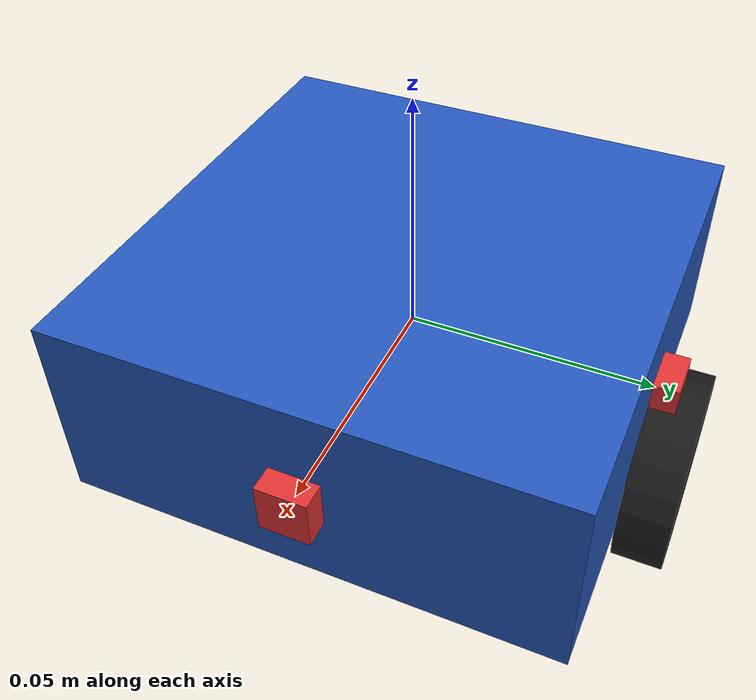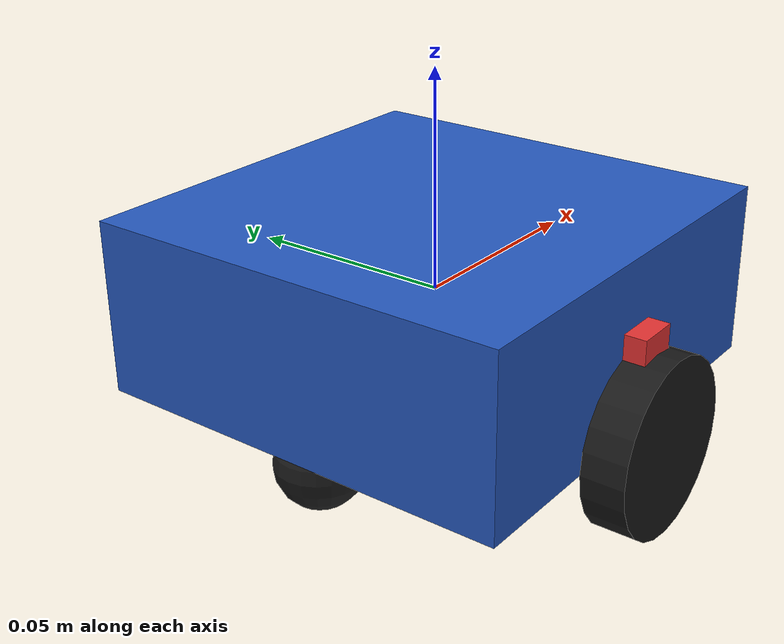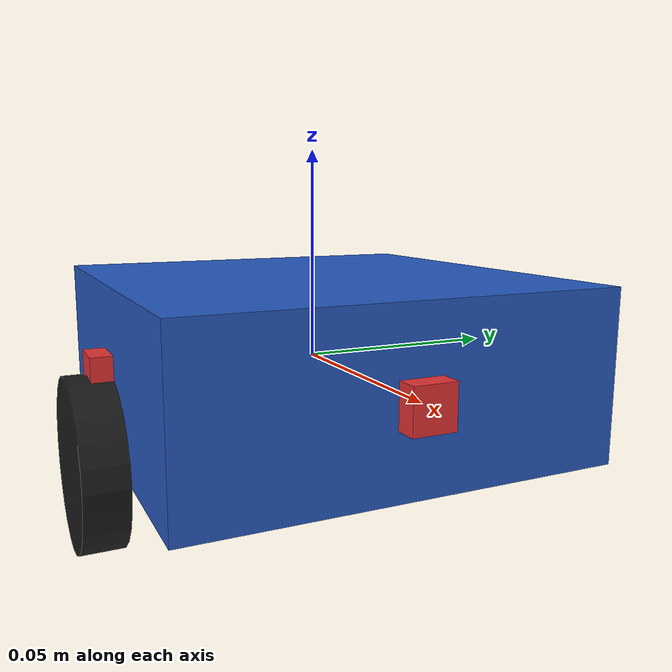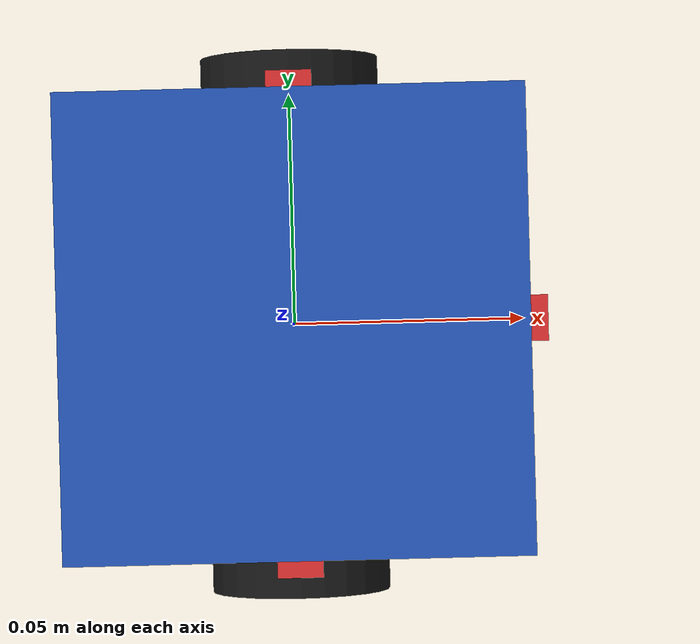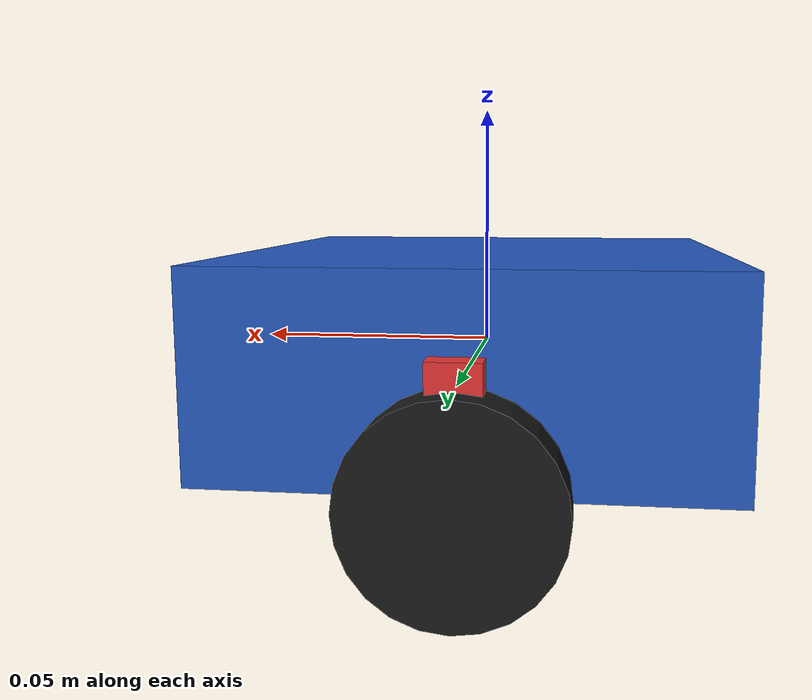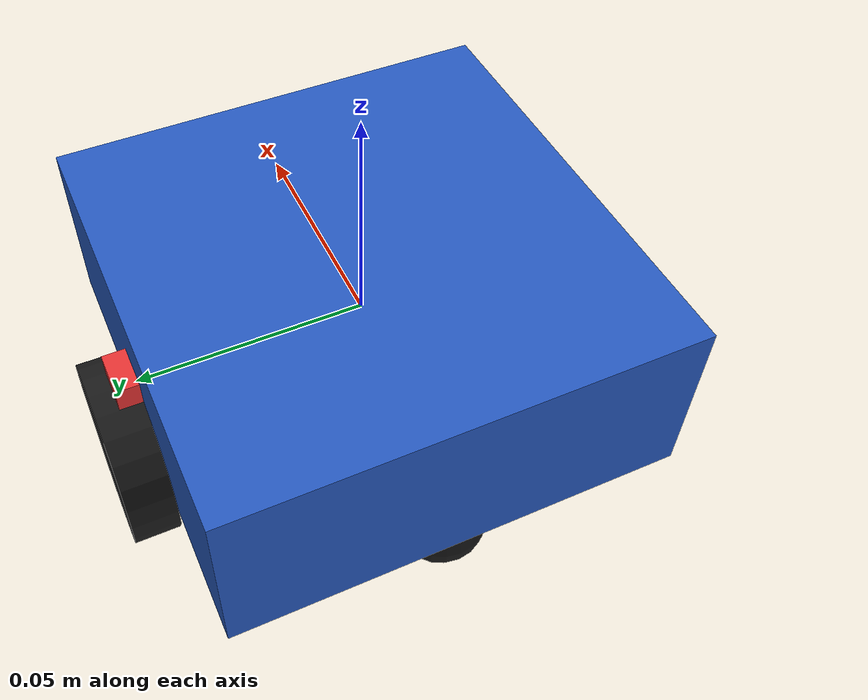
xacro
<?xml version="1.0"?>
<robot name="swarmbot" xmlns:xacro="http://www.ros.org/wiki/xacro">

  <!-- Placeholder chassis dimensions (small N20-motor diff-drive robot).
       Adjust once real chassis measurements are known. -->
  <xacro:property name="chassis_length" value="0.10"/>
  <xacro:property name="chassis_width" value="0.10"/>
  <xacro:property name="chassis_height" value="0.04"/>
  <xacro:property name="wheel_radius" value="0.020"/>
  <xacro:property name="wheel_width" value="0.010"/>
  <xacro:property name="wheel_separation" value="0.11"/>

  <material name="chassis_color">
    <color rgba="0.15 0.35 0.75 1.0"/>
  </material>
  <material name="wheel_color">
    <color rgba="0.1 0.1 0.1 1.0"/>
  </material>
  <material name="sensor_color">
    <color rgba="0.9 0.2 0.2 1.0"/>
  </material>

  <link name="base_link">
    <visual>
      <origin xyz="0 0 0" rpy="0 0 0"/>
      <geometry>
        <box size="${chassis_length} ${chassis_width} ${chassis_height}"/>
      </geometry>
      <material name="chassis_color"/>
    </visual>
    <collision>
      <origin xyz="0 0 0" rpy="0 0 0"/>
      <geometry>
        <box size="${chassis_length} ${chassis_width} ${chassis_height}"/>
      </geometry>
    </collision>
  </link>

  <!-- Wheels: driven joints, confirmed to carry encoder-derived odometry later -->
  <xacro:macro name="wheel" params="side y_reflect">
    <link name="wheel_${side}_link">
      <visual>
        <origin xyz="0 0 0" rpy="1.5708 0 0"/>
        <geometry>
          <cylinder radius="${wheel_radius}" length="${wheel_width}"/>
        </geometry>
        <material name="wheel_color"/>
      </visual>
      <collision>
        <origin xyz="0 0 0" rpy="1.5708 0 0"/>
        <geometry>
          <cylinder radius="${wheel_radius}" length="${wheel_width}"/>
        </geometry>
      </collision>
    </link>
    <joint name="wheel_${side}_joint" type="continuous">
      <parent link="base_link"/>
      <child link="wheel_${side}_link"/>
      <origin xyz="0 ${y_reflect * wheel_separation / 2} ${-chassis_height / 2}" rpy="0 0 0"/>
      <axis xyz="0 1 0"/>
    </joint>
  </xacro:macro>
  <xacro:wheel side="left" y_reflect="1"/>
  <xacro:wheel side="right" y_reflect="-1"/>

  <!-- Passive caster (not a driven/encoded joint) -->
  <link name="caster_link">
    <visual>
      <geometry>
        <sphere radius="${wheel_radius / 2}"/>
      </geometry>
      <material name="wheel_color"/>
    </visual>
    <collision>
      <geometry>
        <sphere radius="${wheel_radius / 2}"/>
      </geometry>
    </collision>
  </link>
  <joint name="caster_joint" type="fixed">
    <parent link="base_link"/>
    <child link="caster_link"/>
    <origin xyz="${-chassis_length / 2 + wheel_radius / 2} 0 ${-chassis_height / 2 - wheel_radius / 4}" rpy="0 0 0"/>
  </joint>

  <!-- IMU: confirmed sensor -->
  <link name="imu_link"/>
  <joint name="imu_joint" type="fixed">
    <parent link="base_link"/>
    <child link="imu_link"/>
    <origin xyz="0 0 ${chassis_height / 2}" rpy="0 0 0"/>
  </joint>

  <xacro:macro name="range_sensor" params="name x y yaw">
    <link name="${name}_link">
      <visual>
        <geometry>
          <box size="0.01 0.01 0.01"/>
        </geometry>
        <material name="sensor_color"/>
      </visual>
    </link>
    <joint name="${name}_joint" type="fixed">
      <parent link="base_link"/>
      <child link="${name}_link"/>
      <origin xyz="${x} ${y} 0" rpy="0 0 ${yaw}"/>
    </joint>
  </xacro:macro>
  <xacro:range_sensor name="range_front" x="${chassis_length / 2}" y="0" yaw="0"/>
  <xacro:range_sensor name="range_left" x="0" y="${chassis_width / 2}" yaw="1.5708"/>
  <xacro:range_sensor name="range_right" x="0" y="${-chassis_width / 2}" yaw="-1.5708"/>

</robot>
